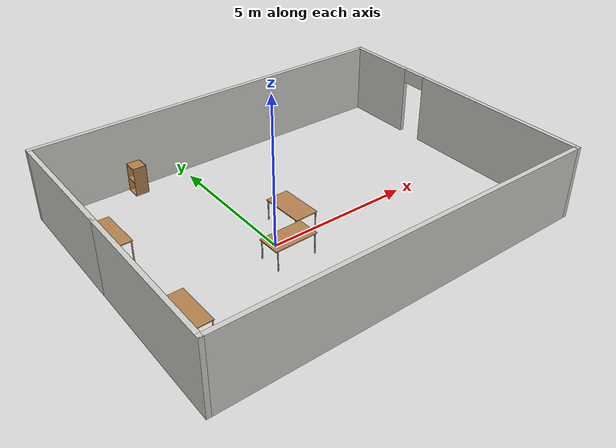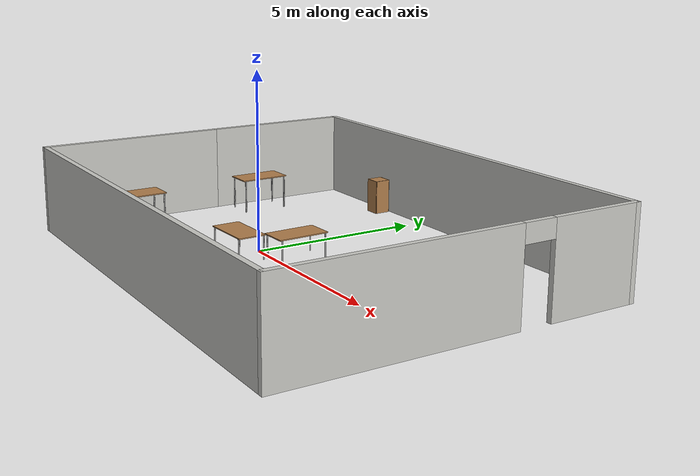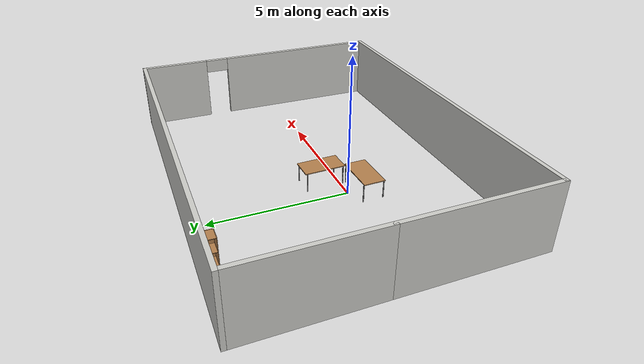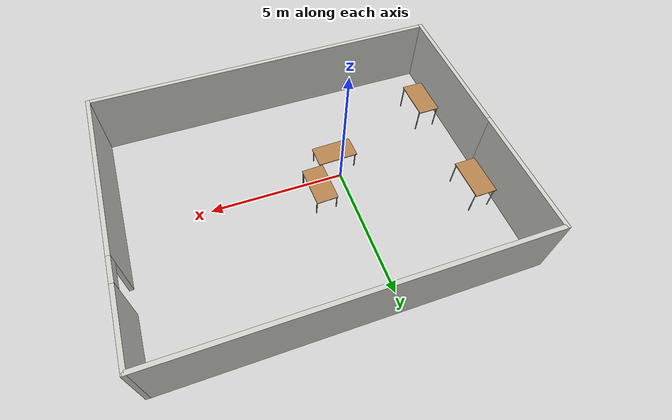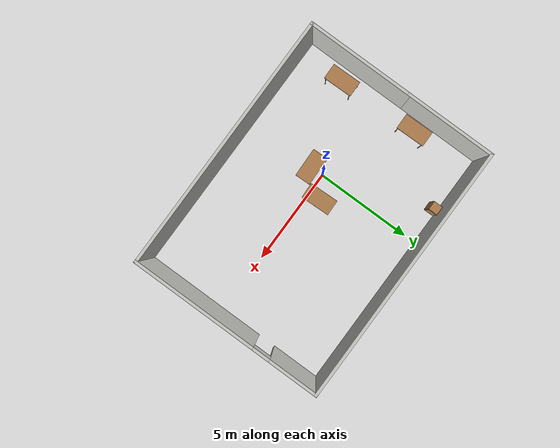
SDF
<sdf version="1.6">
 <world name="default">
  <light name="sun" type="directional">
   <pose>0 0 10 0 -0 0</pose>
   <diffuse>0.8 0.8 0.8 1</diffuse>
   <specular>0.2 0.2 0.2 1</specular>
   <attenuation>
    <range>1000</range>
    <constant>0.9</constant>
    <linear>0.01</linear>
    <quadratic>0.001</quadratic>
   </attenuation>
   <direction>-0.5 0.1 -0.9</direction>
  </light>
  <gravity>0 0 -9.8</gravity>
  <magnetic_field>6e-06 2.3e-05 -4.2e-05</magnetic_field>
  <atmosphere type="adiabatic"/>
  <physics name="default_physics" default="0" type="ode">
   <max_step_size>0.001</max_step_size>
   <real_time_factor>1</real_time_factor>
   <real_time_update_rate>1000</real_time_update_rate>
  </physics>
  <scene><ambient>0.4 0.4 0.4 1</ambient><background>0.7 0.7 0.7 1</background><shadows>1</shadows></scene>
  <audio><device>default</device></audio>
  <spherical_coordinates>
   <surface_model>EARTH_WGS84</surface_model>
   <latitude_deg>0</latitude_deg>
   <longitude_deg>0</longitude_deg>
   <elevation>0</elevation>
   <heading_deg>0</heading_deg>
  </spherical_coordinates>
  <model name="workplace">
   <pose>1.57684 0.65281 0 0 -0 0</pose>
   <link name="Wall_0">
    <collision name="Wall_0_Collision">
     <geometry><box><size>5.5 0.15 2.5</size></box></geometry>
     <pose>0 0 1.25 0 -0 0</pose>
    </collision>
    <visual name="Wall_0_Visual">
     <pose>0 0 1.25 0 -0 0</pose>
     <geometry><box><size>5.5 0.15 2.5</size></box></geometry>
     <material>
      <script><uri>file://media/materials/scripts/gazebo.material</uri><name>Gazebo/CeilingTiled</name></script>
      <ambient>1 1 1 1</ambient>
     </material>
     <meta><layer>0</layer></meta>
    </visual>
    <pose>-6.55 -2.25 0 0 -0 -1.5708</pose>
   </link>
   <link name="Wall_1">
    <collision name="Wall_1_Collision">
     <geometry><box><size>13.25 0.15 2.5</size></box></geometry>
     <pose>0 0 1.25 0 -0 0</pose>
    </collision>
    <visual name="Wall_1_Visual">
     <pose>0 0 1.25 0 -0 0</pose>
     <geometry><box><size>13.25 0.15 2.5</size></box></geometry>
     <material>
      <script><uri>file://media/materials/scripts/gazebo.material</uri><name>Gazebo/CeilingTiled</name></script>
      <ambient>1 1 1 1</ambient>
     </material>
     <meta><layer>0</layer></meta>
    </visual>
    <pose>-0 -4.925 0 0 -0 0</pose>
   </link>
   <link name="Wall_3">
    <pose>6.55 -0 0 0 -0 1.5708</pose>
    <visual name="Wall_3_Visual_0">
     <pose>-1.76236 0 1.25 0 -0 0</pose>
     <geometry><box><size>6.47529 0.15 2.5</size></box></geometry>
     <material>
      <script><uri>file://media/materials/scripts/gazebo.material</uri><name>Gazebo/CeilingTiled</name></script>
      <ambient>1 1 1 1</ambient>
     </material>
     <meta><layer>0</layer></meta>
    </visual>
    <collision name="Wall_3_Collision_0">
     <geometry><box><size>6.47529 0.15 2.5</size></box></geometry>
     <pose>-1.76236 0 1.25 0 -0 0</pose>
    </collision>
    <visual name="Wall_3_Visual_1">
     <pose>3.68764 0 1.25 0 -0 0</pose>
     <geometry><box><size>2.62471 0.15 2.5</size></box></geometry>
     <material>
      <script><uri>file://media/materials/scripts/gazebo.material</uri><name>Gazebo/CeilingTiled</name></script>
      <ambient>1 1 1 1</ambient>
     </material>
     <meta><layer>0</layer></meta>
    </visual>
    <collision name="Wall_3_Collision_1">
     <geometry><box><size>2.62471 0.15 2.5</size></box></geometry>
     <pose>3.68764 0 1.25 0 -0 0</pose>
    </collision>
    <visual name="Wall_3_Visual_2">
     <pose>1.92529 0 2.25 0 -0 0</pose>
     <geometry><box><size>0.9 0.15 0.5</size></box></geometry>
     <material>
      <script><uri>file://media/materials/scripts/gazebo.material</uri><name>Gazebo/CeilingTiled</name></script>
      <ambient>1 1 1 1</ambient>
     </material>
     <meta><layer>0</layer></meta>
    </visual>
    <collision name="Wall_3_Collision_2">
     <geometry><box><size>0.9 0.15 0.5</size></box></geometry>
     <pose>1.92529 0 2.25 0 -0 0</pose>
    </collision>
   </link>
   <link name="Wall_4">
    <collision name="Wall_4_Collision">
     <geometry><box><size>13.25 0.15 2.5</size></box></geometry>
     <pose>0 0 1.25 0 -0 0</pose>
    </collision>
    <visual name="Wall_4_Visual">
     <pose>0 0 1.25 0 -0 0</pose>
     <geometry><box><size>13.25 0.15 2.5</size></box></geometry>
     <material>
      <script><uri>file://media/materials/scripts/gazebo.material</uri><name>Gazebo/CeilingTiled</name></script>
      <ambient>1 1 1 1</ambient>
     </material>
     <meta><layer>0</layer></meta>
    </visual>
    <pose>-0 4.925 0 0 -0 3.14159</pose>
   </link>
   <link name="Wall_5">
    <collision name="Wall_5_Collision">
     <geometry><box><size>4.65 0.15 2.5</size></box></geometry>
     <pose>0 0 1.25 0 -0 0</pose>
    </collision>
    <visual name="Wall_5_Visual">
     <pose>0 0 1.25 0 -0 0</pose>
     <geometry><box><size>4.65 0.15 2.5</size></box></geometry>
     <material>
      <script><uri>file://media/materials/scripts/gazebo.material</uri><name>Gazebo/CeilingTiled</name></script>
      <ambient>1 1 1 1</ambient>
     </material>
     <meta><layer>0</layer></meta>
    </visual>
    <pose>-6.55 2.675 0 0 -0 -1.5708</pose>
   </link>
   <static>1</static>
  </model>
  <model name="cabinet">
   <static>1</static>
   <link name="cabinet_bottom_plate">
    <inertial>
     <pose>0 0 -1 0 -0 0</pose>
     <inertia><ixx>2.05</ixx><ixy>0</ixy><ixz>0</ixz><iyy>2.05</iyy><iyz>0</iyz><izz>2.05</izz></inertia>
     <mass>25</mass>
    </inertial>
    <collision name="cabinet_bottom_plate_geom">
     <pose>0 0 0.01 0 -0 0</pose>
     <geometry><box><size>0.45 0.45 0.02</size></box></geometry>
    </collision>
    <visual name="cabinet_bottom_plate_geom_visual">
     <pose>0 0 0.01 0 -0 0</pose>
     <geometry><box><size>0.45 0.45 0.02</size></box></geometry>
     <material>
      <script><uri>file://media/materials/scripts/gazebo.material</uri><name>Gazebo/Wood</name></script>
     </material>
    </visual>
    <collision name="cabinet_bottom_plate_geom_cabinet_back_plate">
     <pose>0.235 0 0.51 0 -0 0</pose>
     <geometry><box><size>0.02 0.45 1.02</size></box></geometry>
    </collision>
    <visual name="cabinet_bottom_plate_geom_cabinet_back_plate_visual">
     <pose>0.235 0 0.51 0 -0 0</pose>
     <geometry><box><size>0.02 0.45 1.02</size></box></geometry>
     <material>
      <script><uri>file://media/materials/scripts/gazebo.material</uri><name>Gazebo/Wood</name></script>
     </material>
    </visual>
    <collision name="cabinet_bottom_plate_geom_cabinet_left_plate">
     <pose>0 0.235 0.51 0 -0 0</pose>
     <geometry><box><size>0.45 0.02 1.02</size></box></geometry>
    </collision>
    <visual name="cabinet_bottom_plate_geom_cabinet_left_plate_visual">
     <pose>0 0.235 0.51 0 -0 0</pose>
     <geometry><box><size>0.45 0.02 1.02</size></box></geometry>
     <material>
      <script><uri>file://media/materials/scripts/gazebo.material</uri><name>Gazebo/Wood</name></script>
     </material>
    </visual>
    <collision name="cabinet_bottom_plate_geom_cabinet_middle_plate">
     <pose>0 0 0.51 0 -0 0</pose>
     <geometry><box><size>0.45 0.45 0.02</size></box></geometry>
    </collision>
    <visual name="cabinet_bottom_plate_geom_cabinet_middle_plate_visual">
     <pose>0 0 0.51 0 -0 0</pose>
     <geometry><box><size>0.45 0.45 0.02</size></box></geometry>
     <material>
      <script><uri>file://media/materials/scripts/gazebo.material</uri><name>Gazebo/Wood</name></script>
     </material>
    </visual>
    <collision name="cabinet_bottom_plate_geom_cabinet_right_plate">
     <pose>0 -0.235 0.51 0 -0 0</pose>
     <geometry><box><size>0.45 0.02 1.02</size></box></geometry>
    </collision>
    <visual name="cabinet_bottom_plate_geom_cabinet_right_plate_visual">
     <pose>0 -0.235 0.51 0 -0 0</pose>
     <geometry><box><size>0.45 0.02 1.02</size></box></geometry>
     <material>
      <script><uri>file://media/materials/scripts/gazebo.material</uri><name>Gazebo/Wood</name></script>
     </material>
    </visual>
    <collision name="cabinet_bottom_plate_geom_cabinet_top_plate">
     <pose>0 0 1.01 0 -0 0</pose>
     <geometry><box><size>0.45 0.45 0.02</size></box></geometry>
    </collision>
    <visual name="cabinet_bottom_plate_geom_cabinet_top_plate_visual">
     <pose>0 0 1.01 0 -0 0</pose>
     <geometry><box><size>0.45 0.45 0.02</size></box></geometry>
     <material>
      <script><uri>file://media/materials/scripts/gazebo.material</uri><name>Gazebo/Wood</name></script>
     </material>
    </visual>
   </link>
   <pose>-1.82761 5.21986 0 0 -0 0</pose>
  </model>
  <model name="table">
   <static>1</static>
   <link name="link">
    <collision name="surface">
     <pose>0 0 1 0 -0 0</pose>
     <geometry><box><size>1.5 0.8 0.03</size></box></geometry>
     <surface><friction><ode><mu>0.6</mu><mu2>0.6</mu2></ode></friction></surface>
    </collision>
    <visual name="visual1">
     <pose>0 0 1 0 -0 0</pose>
     <geometry><box><size>1.5 0.8 0.03</size></box></geometry>
     <material>
      <script><uri>file://media/materials/scripts/gazebo.material</uri><name>Gazebo/Wood</name></script>
     </material>
    </visual>
    <collision name="front_left_leg">
     <pose>0.68 0.38 0.5 0 -0 0</pose>
     <geometry><cylinder><radius>0.02</radius><length>1</length></cylinder></geometry>
    </collision>
    <visual name="front_left_leg">
     <pose>0.68 0.38 0.5 0 -0 0</pose>
     <geometry><cylinder><radius>0.02</radius><length>1</length></cylinder></geometry>
     <material>
      <script><uri>file://media/materials/scripts/gazebo.material</uri><name>Gazebo/Grey</name></script>
     </material>
    </visual>
    <collision name="front_right_leg">
     <pose>0.68 -0.38 0.5 0 -0 0</pose>
     <geometry><cylinder><radius>0.02</radius><length>1</length></cylinder></geometry>
    </collision>
    <visual name="front_right_leg">
     <pose>0.68 -0.38 0.5 0 -0 0</pose>
     <geometry><cylinder><radius>0.02</radius><length>1</length></cylinder></geometry>
     <material>
      <script><uri>file://media/materials/scripts/gazebo.material</uri><name>Gazebo/Grey</name></script>
     </material>
    </visual>
    <collision name="back_right_leg">
     <pose>-0.68 -0.38 0.5 0 -0 0</pose>
     <geometry><cylinder><radius>0.02</radius><length>1</length></cylinder></geometry>
    </collision>
    <visual name="back_right_leg">
     <pose>-0.68 -0.38 0.5 0 -0 0</pose>
     <geometry><cylinder><radius>0.02</radius><length>1</length></cylinder></geometry>
     <material>
      <script><uri>file://media/materials/scripts/gazebo.material</uri><name>Gazebo/Grey</name></script>
     </material>
    </visual>
    <collision name="back_left_leg">
     <pose>-0.68 0.38 0.5 0 -0 0</pose>
     <geometry><cylinder><radius>0.02</radius><length>1</length></cylinder></geometry>
    </collision>
    <visual name="back_left_leg">
     <pose>-0.68 0.38 0.5 0 -0 0</pose>
     <geometry><cylinder><radius>0.02</radius><length>1</length></cylinder></geometry>
     <material>
      <script><uri>file://media/materials/scripts/gazebo.material</uri><name>Gazebo/Grey</name></script>
     </material>
    </visual>
   </link>
   <pose>-4.19959 2.27172 0 0 0 -1.55628</pose>
  </model>
  <model name="table_clone">
   <static>1</static>
   <link name="link">
    <collision name="surface">
     <pose>0 0 1 0 -0 0</pose>
     <geometry><box><size>1.5 0.8 0.03</size></box></geometry>
     <surface><friction><ode><mu>0.6</mu><mu2>0.6</mu2></ode></friction></surface>
    </collision>
    <visual name="visual1">
     <pose>0 0 1 0 -0 0</pose>
     <geometry><box><size>1.5 0.8 0.03</size></box></geometry>
     <material>
      <script><uri>file://media/materials/scripts/gazebo.material</uri><name>Gazebo/Wood</name></script>
     </material>
    </visual>
    <collision name="front_left_leg">
     <pose>0.68 0.38 0.5 0 -0 0</pose>
     <geometry><cylinder><radius>0.02</radius><length>1</length></cylinder></geometry>
    </collision>
    <visual name="front_left_leg">
     <pose>0.68 0.38 0.5 0 -0 0</pose>
     <geometry><cylinder><radius>0.02</radius><length>1</length></cylinder></geometry>
     <material>
      <script><uri>file://media/materials/scripts/gazebo.material</uri><name>Gazebo/Grey</name></script>
     </material>
    </visual>
    <collision name="front_right_leg">
     <pose>0.68 -0.38 0.5 0 -0 0</pose>
     <geometry><cylinder><radius>0.02</radius><length>1</length></cylinder></geometry>
    </collision>
    <visual name="front_right_leg">
     <pose>0.68 -0.38 0.5 0 -0 0</pose>
     <geometry><cylinder><radius>0.02</radius><length>1</length></cylinder></geometry>
     <material>
      <script><uri>file://media/materials/scripts/gazebo.material</uri><name>Gazebo/Grey</name></script>
     </material>
    </visual>
    <collision name="back_right_leg">
     <pose>-0.68 -0.38 0.5 0 -0 0</pose>
     <geometry><cylinder><radius>0.02</radius><length>1</length></cylinder></geometry>
    </collision>
    <visual name="back_right_leg">
     <pose>-0.68 -0.38 0.5 0 -0 0</pose>
     <geometry><cylinder><radius>0.02</radius><length>1</length></cylinder></geometry>
     <material>
      <script><uri>file://media/materials/scripts/gazebo.material</uri><name>Gazebo/Grey</name></script>
     </material>
    </visual>
    <collision name="back_left_leg">
     <pose>-0.68 0.38 0.5 0 -0 0</pose>
     <geometry><cylinder><radius>0.02</radius><length>1</length></cylinder></geometry>
    </collision>
    <visual name="back_left_leg">
     <pose>-0.68 0.38 0.5 0 -0 0</pose>
     <geometry><cylinder><radius>0.02</radius><length>1</length></cylinder></geometry>
     <material>
      <script><uri>file://media/materials/scripts/gazebo.material</uri><name>Gazebo/Grey</name></script>
     </material>
    </visual>
   </link>
   <pose>-4.08377 -1.86847 0 0 0 -1.55628</pose>
  </model>
  <model name="table_1_0">
   <link name="link">
    <inertial>
     <mass>1</mass>
     <inertia><ixx>1</ixx><ixy>0</ixy><ixz>0</ixz><iyy>1</iyy><iyz>0</iyz><izz>1</izz></inertia>
    </inertial>
    <visual name="visual1">
     <pose>0 0 0.7 0 -0 0</pose>
     <geometry><box><size>1.5 0.8 0.03</size></box></geometry>
     <material>
      <script><uri>file://media/materials/scripts/gazebo.material</uri><name>Gazebo/Wood</name></script>
      <shader type="vertex"><normal_map>__default__</normal_map></shader>
      <ambient>1 1 1 1</ambient>
      <diffuse>1 1 1 1</diffuse>
      <specular>0.2 0.2 0.2 1</specular>
      <emissive>0 0 0 1</emissive>
     </material>
    </visual>
    <visual name="back_left_leg">
     <pose>-0.68 0.38 0.35 0 -0 0</pose>
     <geometry><cylinder><radius>0.02</radius><length>0.7</length></cylinder></geometry>
     <material>
      <script><uri>file://media/materials/scripts/gazebo.material</uri><name>Gazebo/Grey</name></script>
      <shader type="vertex"><normal_map>__default__</normal_map></shader>
      <ambient>0.3 0.3 0.3 1</ambient>
      <diffuse>0.7 0.7 0.7 1</diffuse>
      <specular>0.01 0.01 0.01 1</specular>
      <emissive>0 0 0 1</emissive>
     </material>
    </visual>
    <visual name="front_left_leg">
     <pose>0.68 0.38 0.35 0 -0 0</pose>
     <geometry><cylinder><radius>0.02</radius><length>0.7</length></cylinder></geometry>
     <material>
      <script><uri>file://media/materials/scripts/gazebo.material</uri><name>Gazebo/Grey</name></script>
      <shader type="vertex"><normal_map>__default__</normal_map></shader>
      <ambient>0.3 0.3 0.3 1</ambient>
      <diffuse>0.7 0.7 0.7 1</diffuse>
      <specular>0.01 0.01 0.01 1</specular>
      <emissive>0 0 0 1</emissive>
     </material>
    </visual>
    <visual name="front_right_leg">
     <pose>0.68 -0.38 0.35 0 -0 0</pose>
     <geometry><cylinder><radius>0.02</radius><length>0.7</length></cylinder></geometry>
     <material>
      <script><uri>file://media/materials/scripts/gazebo.material</uri><name>Gazebo/Grey</name></script>
      <shader type="vertex"><normal_map>__default__</normal_map></shader>
      <ambient>0.3 0.3 0.3 1</ambient>
      <diffuse>0.7 0.7 0.7 1</diffuse>
      <specular>0.01 0.01 0.01 1</specular>
      <emissive>0 0 0 1</emissive>
     </material>
    </visual>
    <visual name="back_right_leg">
     <pose>-0.68 -0.38 0.35 0 -0 0</pose>
     <geometry><cylinder><radius>0.02</radius><length>0.7</length></cylinder></geometry>
     <material>
      <script><uri>file://media/materials/scripts/gazebo.material</uri><name>Gazebo/Grey</name></script>
      <shader type="vertex"><normal_map>__default__</normal_map></shader>
      <ambient>0.3 0.3 0.3 1</ambient>
      <diffuse>0.7 0.7 0.7 1</diffuse>
      <specular>0.01 0.01 0.01 1</specular>
      <emissive>0 0 0 1</emissive>
     </material>
    </visual>
    <collision name="surface">
     <pose>0 0 0.7 0 -0 0</pose>
     <geometry><box><size>1.5 0.8 0.03</size></box></geometry>
     <surface>
      <friction>
       <ode><mu>0.6</mu><mu2>0.6</mu2><fdir1>0 0 0</fdir1><slip1>0</slip1><slip2>0</slip2></ode>
       <torsional>
        <coefficient>1</coefficient>
        <patch_radius>0</patch_radius>
        <surface_radius>0</surface_radius>
        <use_patch_radius>1</use_patch_radius>
        <ode><slip>0</slip></ode>
       </torsional>
      </friction>
      <bounce><restitution_coefficient>0</restitution_coefficient><threshold>1e+06</threshold></bounce>
      <contact>
       <collide_without_contact>0</collide_without_contact>
       <collide_without_contact_bitmask>1</collide_without_contact_bitmask>
       <collide_bitmask>1</collide_bitmask>
       <ode>
        <soft_cfm>0</soft_cfm>
        <soft_erp>0.2</soft_erp>
        <kp>1e+13</kp>
        <kd>1</kd>
        <max_vel>0.01</max_vel>
        <min_depth>0</min_depth>
       </ode>
       <bullet>
        <split_impulse>1</split_impulse>
        <split_impulse_penetration_threshold>-0.01</split_impulse_penetration_threshold>
        <soft_cfm>0</soft_cfm>
        <soft_erp>0.2</soft_erp>
        <kp>1e+13</kp>
        <kd>1</kd>
       </bullet>
      </contact>
     </surface>
    </collision>
    <collision name="front_left_leg">
     <pose>0.68 0.38 0.35 0 -0 0</pose>
     <geometry><cylinder><radius>0.02</radius><length>0.7</length></cylinder></geometry>
     <surface>
      <friction>
       <ode><mu>1</mu><mu2>1</mu2><fdir1>0 0 0</fdir1><slip1>0</slip1><slip2>0</slip2></ode>
       <torsional>
        <coefficient>1</coefficient>
        <patch_radius>0</patch_radius>
        <surface_radius>0</surface_radius>
        <use_patch_radius>1</use_patch_radius>
        <ode><slip>0</slip></ode>
       </torsional>
      </friction>
      <bounce><restitution_coefficient>0</restitution_coefficient><threshold>1e+06</threshold></bounce>
      <contact>
       <collide_without_contact>0</collide_without_contact>
       <collide_without_contact_bitmask>1</collide_without_contact_bitmask>
       <collide_bitmask>1</collide_bitmask>
       <ode>
        <soft_cfm>0</soft_cfm>
        <soft_erp>0.2</soft_erp>
        <kp>1e+13</kp>
        <kd>1</kd>
        <max_vel>0.01</max_vel>
        <min_depth>0</min_depth>
       </ode>
       <bullet>
        <split_impulse>1</split_impulse>
        <split_impulse_penetration_threshold>-0.01</split_impulse_penetration_threshold>
        <soft_cfm>0</soft_cfm>
        <soft_erp>0.2</soft_erp>
        <kp>1e+13</kp>
        <kd>1</kd>
       </bullet>
      </contact>
     </surface>
    </collision>
    <collision name="front_right_leg">
     <pose>0.68 -0.38 0.35 0 -0 0</pose>
     <geometry><cylinder><radius>0.02</radius><length>0.7</length></cylinder></geometry>
     <surface>
      <friction>
       <ode><mu>1</mu><mu2>1</mu2><fdir1>0 0 0</fdir1><slip1>0</slip1><slip2>0</slip2></ode>
       <torsional>
        <coefficient>1</coefficient>
        <patch_radius>0</patch_radius>
        <surface_radius>0</surface_radius>
        <use_patch_radius>1</use_patch_radius>
        <ode><slip>0</slip></ode>
       </torsional>
      </friction>
      <bounce><restitution_coefficient>0</restitution_coefficient><threshold>1e+06</threshold></bounce>
      <contact>
       <collide_without_contact>0</collide_without_contact>
       <collide_without_contact_bitmask>1</collide_without_contact_bitmask>
       <collide_bitmask>1</collide_bitmask>
       <ode>
        <soft_cfm>0</soft_cfm>
        <soft_erp>0.2</soft_erp>
        <kp>1e+13</kp>
        <kd>1</kd>
        <max_vel>0.01</max_vel>
        <min_depth>0</min_depth>
       </ode>
       <bullet>
        <split_impulse>1</split_impulse>
        <split_impulse_penetration_threshold>-0.01</split_impulse_penetration_threshold>
        <soft_cfm>0</soft_cfm>
        <soft_erp>0.2</soft_erp>
        <kp>1e+13</kp>
        <kd>1</kd>
       </bullet>
      </contact>
     </surface>
    </collision>
    <collision name="back_left_leg">
     <pose>-0.68 0.38 0.35 0 -0 0</pose>
     <geometry><cylinder><radius>0.02</radius><length>0.7</length></cylinder></geometry>
     <surface>
      <friction>
       <ode><mu>1</mu><mu2>1</mu2><fdir1>0 0 0</fdir1><slip1>0</slip1><slip2>0</slip2></ode>
       <torsional>
        <coefficient>1</coefficient>
        <patch_radius>0</patch_radius>
        <surface_radius>0</surface_radius>
        <use_patch_radius>1</use_patch_radius>
        <ode><slip>0</slip></ode>
       </torsional>
      </friction>
      <bounce><restitution_coefficient>0</restitution_coefficient><threshold>1e+06</threshold></bounce>
      <contact>
       <collide_without_contact>0</collide_without_contact>
       <collide_without_contact_bitmask>1</collide_without_contact_bitmask>
       <collide_bitmask>1</collide_bitmask>
       <ode>
        <soft_cfm>0</soft_cfm>
        <soft_erp>0.2</soft_erp>
        <kp>1e+13</kp>
        <kd>1</kd>
        <max_vel>0.01</max_vel>
        <min_depth>0</min_depth>
       </ode>
       <bullet>
        <split_impulse>1</split_impulse>
        <split_impulse_penetration_threshold>-0.01</split_impulse_penetration_threshold>
        <soft_cfm>0</soft_cfm>
        <soft_erp>0.2</soft_erp>
        <kp>1e+13</kp>
        <kd>1</kd>
       </bullet>
      </contact>
     </surface>
    </collision>
    <collision name="back_right_leg">
     <pose>-0.68 -0.38 0.35 0 -0 0</pose>
     <geometry><cylinder><radius>0.02</radius><length>0.7</length></cylinder></geometry>
     <surface>
      <friction>
       <ode><mu>1</mu><mu2>1</mu2><fdir1>0 0 0</fdir1><slip1>0</slip1><slip2>0</slip2></ode>
       <torsional>
        <coefficient>1</coefficient>
        <patch_radius>0</patch_radius>
        <surface_radius>0</surface_radius>
        <use_patch_radius>1</use_patch_radius>
        <ode><slip>0</slip></ode>
       </torsional>
      </friction>
      <bounce><restitution_coefficient>0</restitution_coefficient><threshold>1e+06</threshold></bounce>
      <contact>
       <collide_without_contact>0</collide_without_contact>
       <collide_without_contact_bitmask>1</collide_without_contact_bitmask>
       <collide_bitmask>1</collide_bitmask>
       <ode>
        <soft_cfm>0</soft_cfm>
        <soft_erp>0.2</soft_erp>
        <kp>1e+13</kp>
        <kd>1</kd>
        <max_vel>0.01</max_vel>
        <min_depth>0</min_depth>
       </ode>
       <bullet>
        <split_impulse>1</split_impulse>
        <split_impulse_penetration_threshold>-0.01</split_impulse_penetration_threshold>
        <soft_cfm>0</soft_cfm>
        <soft_erp>0.2</soft_erp>
        <kp>1e+13</kp>
        <kd>1</kd>
       </bullet>
      </contact>
     </surface>
    </collision>
   </link>
   <static>1</static>
   <pose>1.04897 0.584447 0 0 -0 1.60552</pose>
  </model>
  <model name="table_1_clone_">
   <link name="link">
    <inertial>
     <mass>1</mass>
     <inertia><ixx>1</ixx><ixy>0</ixy><ixz>0</ixz><iyy>1</iyy><iyz>0</iyz><izz>1</izz></inertia>
    </inertial>
    <visual name="front_left_leg">
     <pose>0.68 0.38 0.35 0 -0 0</pose>
     <geometry><cylinder><radius>0.02</radius><length>0.7</length></cylinder></geometry>
     <material>
      <script><uri>file://media/materials/scripts/gazebo.material</uri><name>Gazebo/Grey</name></script>
      <shader type="vertex"><normal_map>__default__</normal_map></shader>
      <ambient>0.3 0.3 0.3 1</ambient>
      <diffuse>0.7 0.7 0.7 1</diffuse>
      <specular>0.01 0.01 0.01 1</specular>
      <emissive>0 0 0 1</emissive>
     </material>
    </visual>
    <visual name="front_right_leg">
     <pose>0.68 -0.38 0.35 0 -0 0</pose>
     <geometry><cylinder><radius>0.02</radius><length>0.7</length></cylinder></geometry>
     <material>
      <script><uri>file://media/materials/scripts/gazebo.material</uri><name>Gazebo/Grey</name></script>
      <shader type="vertex"><normal_map>__default__</normal_map></shader>
      <ambient>0.3 0.3 0.3 1</ambient>
      <diffuse>0.7 0.7 0.7 1</diffuse>
      <specular>0.01 0.01 0.01 1</specular>
      <emissive>0 0 0 1</emissive>
     </material>
    </visual>
    <visual name="back_right_leg">
     <pose>-0.68 -0.38 0.35 0 -0 0</pose>
     <geometry><cylinder><radius>0.02</radius><length>0.7</length></cylinder></geometry>
     <material>
      <script><uri>file://media/materials/scripts/gazebo.material</uri><name>Gazebo/Grey</name></script>
      <shader type="vertex"><normal_map>__default__</normal_map></shader>
      <ambient>0.3 0.3 0.3 1</ambient>
      <diffuse>0.7 0.7 0.7 1</diffuse>
      <specular>0.01 0.01 0.01 1</specular>
      <emissive>0 0 0 1</emissive>
     </material>
    </visual>
    <visual name="back_left_leg">
     <pose>-0.68 0.38 0.35 0 -0 0</pose>
     <geometry><cylinder><radius>0.02</radius><length>0.7</length></cylinder></geometry>
     <material>
      <script><uri>file://media/materials/scripts/gazebo.material</uri><name>Gazebo/Grey</name></script>
      <shader type="vertex"><normal_map>__default__</normal_map></shader>
      <ambient>0.3 0.3 0.3 1</ambient>
      <diffuse>0.7 0.7 0.7 1</diffuse>
      <specular>0.01 0.01 0.01 1</specular>
      <emissive>0 0 0 1</emissive>
     </material>
    </visual>
    <visual name="visual1">
     <pose>0 0 0.7 0 -0 0</pose>
     <geometry><box><size>1.5 0.8 0.03</size></box></geometry>
     <material>
      <script><uri>file://media/materials/scripts/gazebo.material</uri><name>Gazebo/Wood</name></script>
      <shader type="vertex"><normal_map>__default__</normal_map></shader>
      <ambient>1 1 1 1</ambient>
      <diffuse>1 1 1 1</diffuse>
      <specular>0.2 0.2 0.2 1</specular>
      <emissive>0 0 0 1</emissive>
     </material>
    </visual>
    <collision name="surface">
     <pose>0 0 0.7 0 -0 0</pose>
     <geometry><box><size>1.5 0.8 0.03</size></box></geometry>
     <surface>
      <friction>
       <ode><mu>0.6</mu><mu2>0.6</mu2><fdir1>0 0 0</fdir1><slip1>0</slip1><slip2>0</slip2></ode>
       <torsional>
        <coefficient>1</coefficient>
        <patch_radius>0</patch_radius>
        <surface_radius>0</surface_radius>
        <use_patch_radius>1</use_patch_radius>
        <ode><slip>0</slip></ode>
       </torsional>
      </friction>
      <bounce><restitution_coefficient>0</restitution_coefficient><threshold>1e+06</threshold></bounce>
      <contact>
       <collide_without_contact>0</collide_without_contact>
       <collide_without_contact_bitmask>1</collide_without_contact_bitmask>
       <collide_bitmask>1</collide_bitmask>
       <ode>
        <soft_cfm>0</soft_cfm>
        <soft_erp>0.2</soft_erp>
        <kp>1e+13</kp>
        <kd>1</kd>
        <max_vel>0.01</max_vel>
        <min_depth>0</min_depth>
       </ode>
       <bullet>
        <split_impulse>1</split_impulse>
        <split_impulse_penetration_threshold>-0.01</split_impulse_penetration_threshold>
        <soft_cfm>0</soft_cfm>
        <soft_erp>0.2</soft_erp>
        <kp>1e+13</kp>
        <kd>1</kd>
       </bullet>
      </contact>
     </surface>
    </collision>
    <collision name="back_left_leg">
     <pose>-0.68 0.38 0.35 0 -0 0</pose>
     <geometry><cylinder><radius>0.02</radius><length>0.7</length></cylinder></geometry>
     <surface>
      <friction>
       <ode><mu>1</mu><mu2>1</mu2><fdir1>0 0 0</fdir1><slip1>0</slip1><slip2>0</slip2></ode>
       <torsional>
        <coefficient>1</coefficient>
        <patch_radius>0</patch_radius>
        <surface_radius>0</surface_radius>
        <use_patch_radius>1</use_patch_radius>
        <ode><slip>0</slip></ode>
       </torsional>
      </friction>
      <bounce><restitution_coefficient>0</restitution_coefficient><threshold>1e+06</threshold></bounce>
      <contact>
       <collide_without_contact>0</collide_without_contact>
       <collide_without_contact_bitmask>1</collide_without_contact_bitmask>
       <collide_bitmask>1</collide_bitmask>
       <ode>
        <soft_cfm>0</soft_cfm>
        <soft_erp>0.2</soft_erp>
        <kp>1e+13</kp>
        <kd>1</kd>
        <max_vel>0.01</max_vel>
        <min_depth>0</min_depth>
       </ode>
       <bullet>
        <split_impulse>1</split_impulse>
        <split_impulse_penetration_threshold>-0.01</split_impulse_penetration_threshold>
        <soft_cfm>0</soft_cfm>
        <soft_erp>0.2</soft_erp>
        <kp>1e+13</kp>
        <kd>1</kd>
       </bullet>
      </contact>
     </surface>
    </collision>
    <collision name="front_left_leg">
     <pose>0.68 0.38 0.35 0 -0 0</pose>
     <geometry><cylinder><radius>0.02</radius><length>0.7</length></cylinder></geometry>
     <surface>
      <friction>
       <ode><mu>1</mu><mu2>1</mu2><fdir1>0 0 0</fdir1><slip1>0</slip1><slip2>0</slip2></ode>
       <torsional>
        <coefficient>1</coefficient>
        <patch_radius>0</patch_radius>
        <surface_radius>0</surface_radius>
        <use_patch_radius>1</use_patch_radius>
        <ode><slip>0</slip></ode>
       </torsional>
      </friction>
      <bounce><restitution_coefficient>0</restitution_coefficient><threshold>1e+06</threshold></bounce>
      <contact>
       <collide_without_contact>0</collide_without_contact>
       <collide_without_contact_bitmask>1</collide_without_contact_bitmask>
       <collide_bitmask>1</collide_bitmask>
       <ode>
        <soft_cfm>0</soft_cfm>
        <soft_erp>0.2</soft_erp>
        <kp>1e+13</kp>
        <kd>1</kd>
        <max_vel>0.01</max_vel>
        <min_depth>0</min_depth>
       </ode>
       <bullet>
        <split_impulse>1</split_impulse>
        <split_impulse_penetration_threshold>-0.01</split_impulse_penetration_threshold>
        <soft_cfm>0</soft_cfm>
        <soft_erp>0.2</soft_erp>
        <kp>1e+13</kp>
        <kd>1</kd>
       </bullet>
      </contact>
     </surface>
    </collision>
    <collision name="front_right_leg">
     <pose>0.68 -0.38 0.35 0 -0 0</pose>
     <geometry><cylinder><radius>0.02</radius><length>0.7</length></cylinder></geometry>
     <surface>
      <friction>
       <ode><mu>1</mu><mu2>1</mu2><fdir1>0 0 0</fdir1><slip1>0</slip1><slip2>0</slip2></ode>
       <torsional>
        <coefficient>1</coefficient>
        <patch_radius>0</patch_radius>
        <surface_radius>0</surface_radius>
        <use_patch_radius>1</use_patch_radius>
        <ode><slip>0</slip></ode>
       </torsional>
      </friction>
      <bounce><restitution_coefficient>0</restitution_coefficient><threshold>1e+06</threshold></bounce>
      <contact>
       <collide_without_contact>0</collide_without_contact>
       <collide_without_contact_bitmask>1</collide_without_contact_bitmask>
       <collide_bitmask>1</collide_bitmask>
       <ode>
        <soft_cfm>0</soft_cfm>
        <soft_erp>0.2</soft_erp>
        <kp>1e+13</kp>
        <kd>1</kd>
        <max_vel>0.01</max_vel>
        <min_depth>0</min_depth>
       </ode>
       <bullet>
        <split_impulse>1</split_impulse>
        <split_impulse_penetration_threshold>-0.01</split_impulse_penetration_threshold>
        <soft_cfm>0</soft_cfm>
        <soft_erp>0.2</soft_erp>
        <kp>1e+13</kp>
        <kd>1</kd>
       </bullet>
      </contact>
     </surface>
    </collision>
    <collision name="back_right_leg">
     <pose>-0.68 -0.38 0.35 0 -0 0</pose>
     <geometry><cylinder><radius>0.02</radius><length>0.7</length></cylinder></geometry>
     <surface>
      <friction>
       <ode><mu>1</mu><mu2>1</mu2><fdir1>0 0 0</fdir1><slip1>0</slip1><slip2>0</slip2></ode>
       <torsional>
        <coefficient>1</coefficient>
        <patch_radius>0</patch_radius>
        <surface_radius>0</surface_radius>
        <use_patch_radius>1</use_patch_radius>
        <ode><slip>0</slip></ode>
       </torsional>
      </friction>
      <bounce><restitution_coefficient>0</restitution_coefficient><threshold>1e+06</threshold></bounce>
      <contact>
       <collide_without_contact>0</collide_without_contact>
       <collide_without_contact_bitmask>1</collide_without_contact_bitmask>
       <collide_bitmask>1</collide_bitmask>
       <ode>
        <soft_cfm>0</soft_cfm>
        <soft_erp>0.2</soft_erp>
        <kp>1e+13</kp>
        <kd>1</kd>
        <max_vel>0.01</max_vel>
        <min_depth>0</min_depth>
       </ode>
       <bullet>
        <split_impulse>1</split_impulse>
        <split_impulse_penetration_threshold>-0.01</split_impulse_penetration_threshold>
        <soft_cfm>0</soft_cfm>
        <soft_erp>0.2</soft_erp>
        <kp>1e+13</kp>
        <kd>1</kd>
       </bullet>
      </contact>
     </surface>
    </collision>
   </link>
   <static>1</static>
   <pose>0.035375 -0.629848 0 0 0 -3.1142</pose>
  </model>
 </world>
</sdf>
